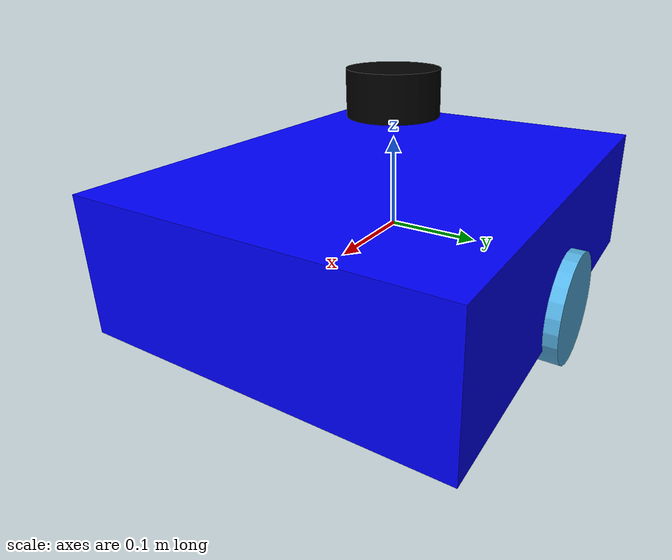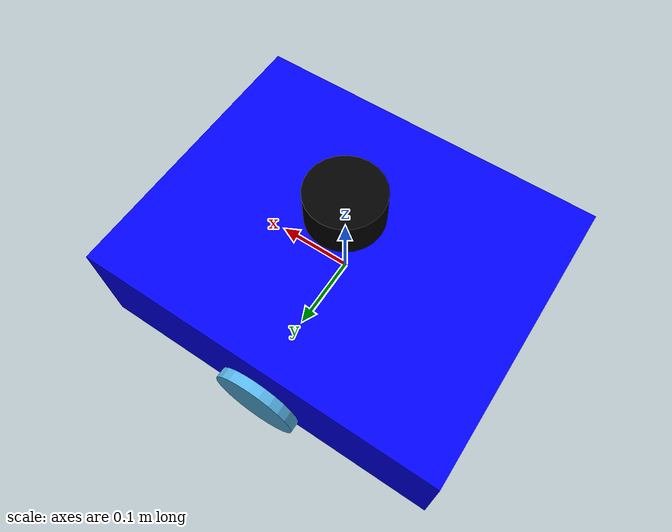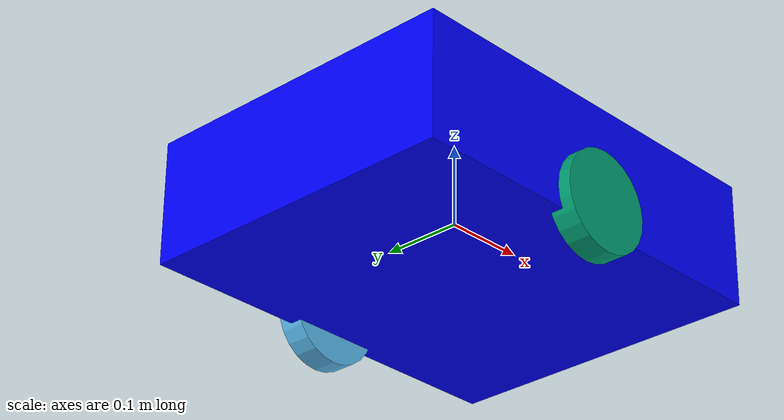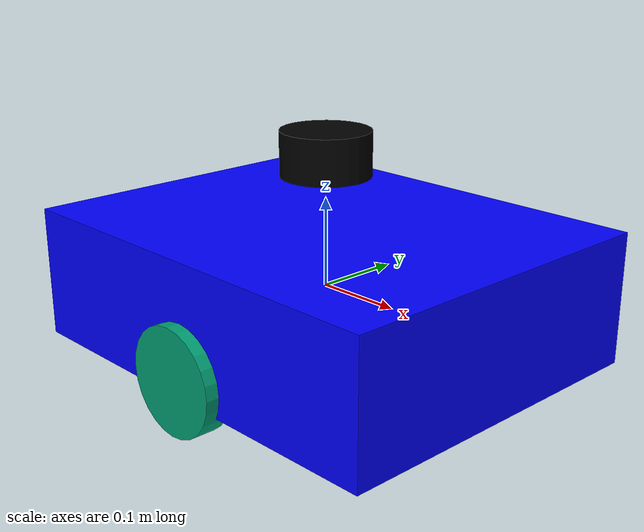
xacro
<?xml version="1.0"?>

<robot name="logistic_cart">

<!-- ================= BASE ================= -->

<link name="base_link">

  <visual>
    <geometry>
      <box size="0.5 0.4 0.15"/>
    </geometry>

    <material name="blue">
      <color rgba="0 0 1 1"/>
    </material>
  </visual>

  <collision>
    <geometry>
      <box size="0.5 0.4 0.15"/>
    </geometry>
  </collision>

  <inertial>
    <mass value="10"/>
    <origin xyz="0 0 0"/>
    <inertia ixx="0.3" iyy="0.3" izz="0.3"
             ixy="0" ixz="0" iyz="0"/>
  </inertial>

</link>

<!-- ================= LEFT WHEEL ================= -->

<link name="left_wheel">

  <visual>
    <origin rpy="1.5708 0 0"/>
    <geometry>
      <cylinder radius="0.06" length="0.03"/>
    </geometry>
  </visual>

  <collision>
    <origin rpy="1.5708 0 0"/>
    <geometry>
      <cylinder radius="0.06" length="0.03"/>
    </geometry>
  </collision>

  <inertial>
    <mass value="1"/>
    <inertia ixx="0.01" iyy="0.01" izz="0.01"
             ixy="0" ixz="0" iyz="0"/>
  </inertial>

</link>

<!-- ================= RIGHT WHEEL ================= -->

<link name="right_wheel">

  <visual>
    <origin rpy="1.5708 0 0"/>
    <geometry>
      <cylinder radius="0.06" length="0.03"/>
    </geometry>
  </visual>

  <collision>
    <origin rpy="1.5708 0 0"/>
    <geometry>
      <cylinder radius="0.06" length="0.03"/>
    </geometry>
  </collision>

  <inertial>
    <mass value="1"/>
    <inertia ixx="0.01" iyy="0.01" izz="0.01"
             ixy="0" ixz="0" iyz="0"/>
  </inertial>

</link>

<!-- ================= LEFT WHEEL JOINT ================= -->

<joint name="left_wheel_joint" type="continuous">

  <parent link="base_link"/>
  <child link="left_wheel"/>

  <origin xyz="0 0.2 -0.05"/>
  <axis xyz="0 1 0"/>

</joint>

<!-- ================= RIGHT WHEEL JOINT ================= -->

<joint name="right_wheel_joint" type="continuous">

  <parent link="base_link"/>
  <child link="right_wheel"/>

  <origin xyz="0 -0.2 -0.05"/>
  <axis xyz="0 1 0"/>

</joint>

<!-- ================= LIDAR SENSOR ================= -->

<link name="lidar_link">

  <visual>
    <geometry>
      <cylinder radius="0.05" length="0.05"/>
    </geometry>

    <material name="black">
      <color rgba="0 0 0 1"/>
    </material>

  </visual>

  <collision>
    <geometry>
      <cylinder radius="0.05" length="0.05"/>
    </geometry>
  </collision>

  <inertial>
    <mass value="0.2"/>
    <inertia ixx="0.001" iyy="0.001" izz="0.001"
             ixy="0" ixz="0" iyz="0"/>
  </inertial>

</link>

<!-- LIDAR JOINT -->

<joint name="lidar_joint" type="fixed">

  <parent link="base_link"/>
  <child link="lidar_link"/>

  <origin xyz="0 0 0.15"/>

</joint>

<!-- ================= DIFF DRIVE PLUGIN ================= -->

<gazebo>

  <plugin filename="libgz-sim-diff-drive-system.so"
          name="gz::sim::systems::DiffDrive">

    <left_joint>left_wheel_joint</left_joint>
    <right_joint>right_wheel_joint</right_joint>

    <wheel_separation>0.40</wheel_separation>
    <wheel_radius>0.06</wheel_radius>

    <topic>/cmd_vel</topic>

  </plugin>

</gazebo>

<!-- ================= LIDAR GAZEBO PLUGIN ================= -->

<gazebo reference="lidar_link">

  <sensor name="lidar_sensor" type="gpu_lidar">

    <update_rate>10</update_rate>

    <lidar>

      <scan>

        <horizontal>

          <samples>720</samples>
          <resolution>1</resolution>
          <min_angle>-3.14159</min_angle>
          <max_angle>3.14159</max_angle>

        </horizontal>

      </scan>

      <range>

        <min>0.12</min>
        <max>10</max>
        <resolution>0.01</resolution>

      </range>

    </lidar>

    <topic>/scan</topic>

  </sensor>

</gazebo>

</robot>
